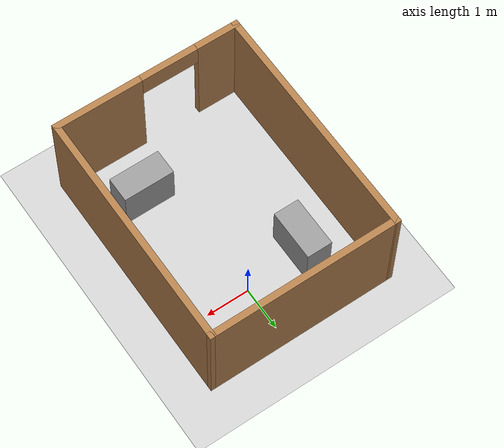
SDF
<sdf version="1.6">
 <world name="__default__">
  <gravity>0 0 -9.8</gravity>
  <magnetic_field>6e-06 2.3e-05 -4.2e-05</magnetic_field>
  <atmosphere type="adiabatic"/>
  <physics name="default_physics" default="0" type="ode">
   <max_step_size>0.001</max_step_size>
   <real_time_factor>1</real_time_factor>
   <real_time_update_rate>1000</real_time_update_rate>
  </physics>
  <scene><ambient>0.4 0.4 0.4 1</ambient><background>0.7 0.7 0.7 1</background><shadows>1</shadows></scene>
  <audio><device>default</device></audio>
  <spherical_coordinates>
   <surface_model>EARTH_WGS84</surface_model>
   <latitude_deg>0</latitude_deg>
   <longitude_deg>0</longitude_deg>
   <elevation>0</elevation>
   <heading_deg>0</heading_deg>
  </spherical_coordinates>
  <model name="exterior">
   <pose>-0.38317 -1.41867 0 0 -0 0</pose>
   <link name="Wall_3">
    <collision name="Wall_3_Collision">
     <geometry><box><size>5.664 0.15 2.5</size></box></geometry>
     <pose>0 0 1.25 0 -0 0</pose>
    </collision>
    <visual name="Wall_3_Visual">
     <pose>0 0 1.25 0 -0 0</pose>
     <geometry><box><size>5.664 0.15 2.5</size></box></geometry>
     <material>
      <script><uri>file://media/materials/scripts/gazebo.material</uri><name>Gazebo/Wood</name></script>
      <ambient>1 1 1 1</ambient>
     </material>
     <meta><layer>0</layer></meta>
    </visual>
    <pose>-2.173 0.000412 0 0 -0 -1.5708</pose>
   </link>
   <link name="Wall_5">
    <pose>0 -2.757 0 0 -0 -0.00019</pose>
    <visual name="Wall_5_Visual_0">
     <pose>-1.71473 0 1.25 0 -0 0</pose>
     <geometry><box><size>1.06654 0.15 2.5</size></box></geometry>
     <material>
      <script><uri>file://media/materials/scripts/gazebo.material</uri><name>Gazebo/Wood</name></script>
      <ambient>1 1 1 1</ambient>
     </material>
     <meta><layer>0</layer></meta>
    </visual>
    <collision name="Wall_5_Collision_0">
     <geometry><box><size>1.06654 0.15 2.5</size></box></geometry>
     <pose>-1.71473 0 1.25 0 -0 0</pose>
    </collision>
    <visual name="Wall_5_Visual_1">
     <pose>1.20809 0 1.25 0 -0 0</pose>
     <geometry><box><size>2.07981 0.15 2.5</size></box></geometry>
     <material>
      <script><uri>file://media/materials/scripts/gazebo.material</uri><name>Gazebo/Wood</name></script>
      <ambient>1 1 1 1</ambient>
     </material>
     <meta><layer>0</layer></meta>
    </visual>
    <collision name="Wall_5_Collision_1">
     <geometry><box><size>2.07981 0.15 2.5</size></box></geometry>
     <pose>1.20809 0 1.25 0 -0 0</pose>
    </collision>
    <visual name="Wall_5_Visual_2">
     <pose>-0.506635 0 2.25 0 -0 0</pose>
     <geometry><box><size>1.34964 0.15 0.5</size></box></geometry>
     <material>
      <script><uri>file://media/materials/scripts/gazebo.material</uri><name>Gazebo/Wood</name></script>
      <ambient>1 1 1 1</ambient>
     </material>
     <meta><layer>0</layer></meta>
    </visual>
    <collision name="Wall_5_Collision_2">
     <geometry><box><size>1.34964 0.15 0.5</size></box></geometry>
     <pose>-0.506635 0 2.25 0 -0 0</pose>
    </collision>
   </link>
   <link name="Wall_6">
    <collision name="Wall_6_Collision">
     <geometry><box><size>5.664 0.15 2.5</size></box></geometry>
     <pose>0 0 1.25 0 -0 0</pose>
    </collision>
    <visual name="Wall_6_Visual">
     <pose>0 0 1.25 0 -0 0</pose>
     <geometry><box><size>5.664 0.15 2.5</size></box></geometry>
     <material>
      <script><uri>file://media/materials/scripts/gazebo.material</uri><name>Gazebo/Wood</name></script>
      <ambient>1 1 1 1</ambient>
     </material>
     <meta><layer>0</layer></meta>
    </visual>
    <pose>2.173 -0.000412 0 0 -0 1.5708</pose>
   </link>
   <link name="Wall_8">
    <collision name="Wall_8_Collision">
     <geometry><box><size>4.496 0.15 2.5</size></box></geometry>
     <pose>0 0 1.25 0 -0 0</pose>
    </collision>
    <visual name="Wall_8_Visual">
     <pose>0 0 1.25 0 -0 0</pose>
     <geometry><box><size>4.496 0.15 2.5</size></box></geometry>
     <material>
      <script><uri>file://media/materials/scripts/gazebo.material</uri><name>Gazebo/Wood</name></script>
      <ambient>1 1 1 1</ambient>
     </material>
     <meta><layer>0</layer></meta>
    </visual>
    <pose>0 2.757 0 0 -0 3.1414</pose>
   </link>
   <static>1</static>
  </model>
  <model name="ground_plane">
   <static>1</static>
   <link name="link">
    <collision name="collision">
     <geometry><plane><normal>0 0 1</normal><size>100 100</size></plane></geometry>
     <surface>
      <contact><collide_bitmask>65535</collide_bitmask></contact>
      <friction><ode><mu>100</mu><mu2>50</mu2></ode></friction>
     </surface>
    </collision>
    <visual name="visual">
     <cast_shadows>0</cast_shadows>
     <geometry><plane><normal>0 0 1</normal><size>100 100</size></plane></geometry>
     <material>
      <script><uri>file://media/materials/scripts/gazebo.material</uri><name>Gazebo/Grey</name></script>
     </material>
    </visual>
   </link>
   <pose>-2.57448 1.48376 0 0 -0 0</pose>
  </model>
  <light name="user_point_light_0" type="point">
   <pose>-0.057724 -1.74392 1 0 -0 0</pose>
   <diffuse>0.5 0.5 0.5 1</diffuse>
   <specular>0.1 0.1 0.1 1</specular>
   <attenuation>
    <range>20</range>
    <constant>0.5</constant>
    <linear>0.01</linear>
    <quadratic>0.001</quadratic>
   </attenuation>
   <cast_shadows>0</cast_shadows>
   <direction>0 0 -1</direction>
  </light>
  <model name="interior">
   <link name="link_0_clone">
    <inertial>
     <mass>1.44494</mass>
     <inertia>
      <ixx>0.125356</ixx>
      <ixy>0</ixy>
      <ixz>0</ixz>
      <iyy>0.261233</iyy>
      <iyz>0</iyz>
      <izz>0.25041</izz>
     </inertia>
    </inertial>
    <pose>-0.87261 1.11836 0 0 -0 1.56751</pose>
    <visual name="visual">
     <geometry><box><size>1.194 0.597 1</size></box></geometry>
     <material>
      <lighting>1</lighting>
      <script><uri>file://media/materials/scripts/gazebo.material</uri><name>Gazebo/Grey</name></script>
      <shader type="normal_map_object_space"><normal_map>__default__</normal_map></shader>
      <ambient>0.3 0.3 0.3 1</ambient>
      <diffuse>0.7 0.7 0.7 1</diffuse>
      <specular>0.01 0.01 0.01 1</specular>
      <emissive>0 0 0 1</emissive>
     </material>
    </visual>
    <collision name="collision">
     <geometry><box><size>1.194 0.597 1</size></box></geometry>
     <surface>
      <friction>
       <ode><mu>1</mu><mu2>1</mu2><fdir1>0 0 0</fdir1><slip1>0</slip1><slip2>0</slip2></ode>
       <torsional>
        <coefficient>1</coefficient>
        <patch_radius>0</patch_radius>
        <surface_radius>0</surface_radius>
        <use_patch_radius>1</use_patch_radius>
        <ode><slip>0</slip></ode>
       </torsional>
      </friction>
      <bounce><restitution_coefficient>0</restitution_coefficient><threshold>1e+06</threshold></bounce>
      <contact>
       <collide_without_contact>0</collide_without_contact>
       <collide_without_contact_bitmask>1</collide_without_contact_bitmask>
       <collide_bitmask>1</collide_bitmask>
       <ode>
        <soft_cfm>0</soft_cfm>
        <soft_erp>0.2</soft_erp>
        <kp>1e+13</kp>
        <kd>1</kd>
        <max_vel>0.01</max_vel>
        <min_depth>0</min_depth>
       </ode>
       <bullet>
        <split_impulse>1</split_impulse>
        <split_impulse_penetration_threshold>-0.01</split_impulse_penetration_threshold>
        <soft_cfm>0</soft_cfm>
        <soft_erp>0.2</soft_erp>
        <kp>1e+13</kp>
        <kd>1</kd>
       </bullet>
      </contact>
     </surface>
    </collision>
   </link>
   <link name="link_0_clone_clone">
    <inertial>
     <mass>1.44494</mass>
     <inertia>
      <ixx>0.125356</ixx>
      <ixy>0</ixy>
      <ixz>0</ixz>
      <iyy>0.261233</iyy>
      <iyz>0</iyz>
      <izz>0.25041</izz>
     </inertia>
    </inertial>
    <pose>1.15827 -1.75402 0 0 -0 0.000646</pose>
    <visual name="visual">
     <geometry><box><size>1.194 0.597 1</size></box></geometry>
     <material>
      <lighting>1</lighting>
      <script><uri>file://media/materials/scripts/gazebo.material</uri><name>Gazebo/Grey</name></script>
      <shader type="normal_map_object_space"><normal_map>__default__</normal_map></shader>
      <ambient>0.3 0.3 0.3 1</ambient>
      <diffuse>0.7 0.7 0.7 1</diffuse>
      <specular>0.01 0.01 0.01 1</specular>
      <emissive>0 0 0 1</emissive>
     </material>
    </visual>
    <collision name="collision">
     <geometry><box><size>1.194 0.597 1</size></box></geometry>
     <surface>
      <friction>
       <ode><mu>1</mu><mu2>1</mu2><fdir1>0 0 0</fdir1><slip1>0</slip1><slip2>0</slip2></ode>
       <torsional>
        <coefficient>1</coefficient>
        <patch_radius>0</patch_radius>
        <surface_radius>0</surface_radius>
        <use_patch_radius>1</use_patch_radius>
        <ode><slip>0</slip></ode>
       </torsional>
      </friction>
      <bounce><restitution_coefficient>0</restitution_coefficient><threshold>1e+06</threshold></bounce>
      <contact>
       <collide_without_contact>0</collide_without_contact>
       <collide_without_contact_bitmask>1</collide_without_contact_bitmask>
       <collide_bitmask>1</collide_bitmask>
       <ode>
        <soft_cfm>0</soft_cfm>
        <soft_erp>0.2</soft_erp>
        <kp>1e+13</kp>
        <kd>1</kd>
        <max_vel>0.01</max_vel>
        <min_depth>0</min_depth>
       </ode>
       <bullet>
        <split_impulse>1</split_impulse>
        <split_impulse_penetration_threshold>-0.01</split_impulse_penetration_threshold>
        <soft_cfm>0</soft_cfm>
        <soft_erp>0.2</soft_erp>
        <kp>1e+13</kp>
        <kd>1</kd>
       </bullet>
      </contact>
     </surface>
    </collision>
   </link>
   <static>0</static>
   <pose>-0.569598 -1.25404 0.5 0 -0 0.001407</pose>
  </model>
 </world>
</sdf>
